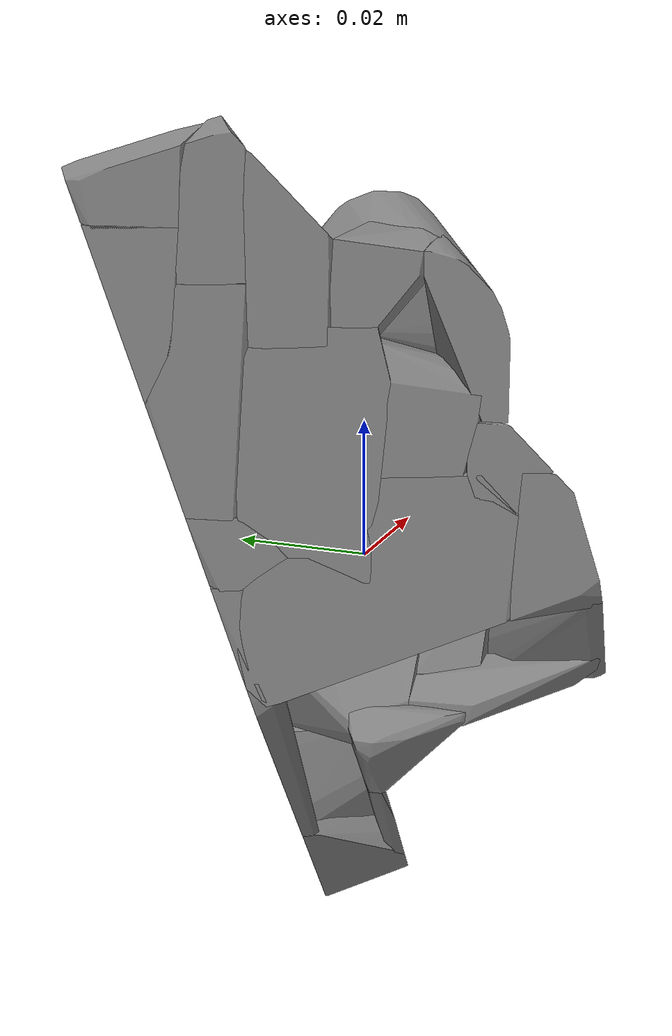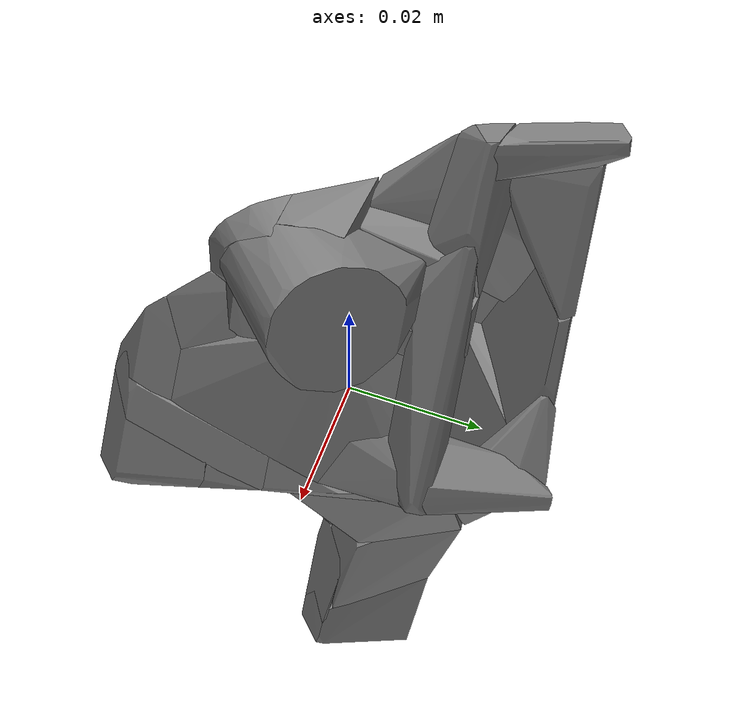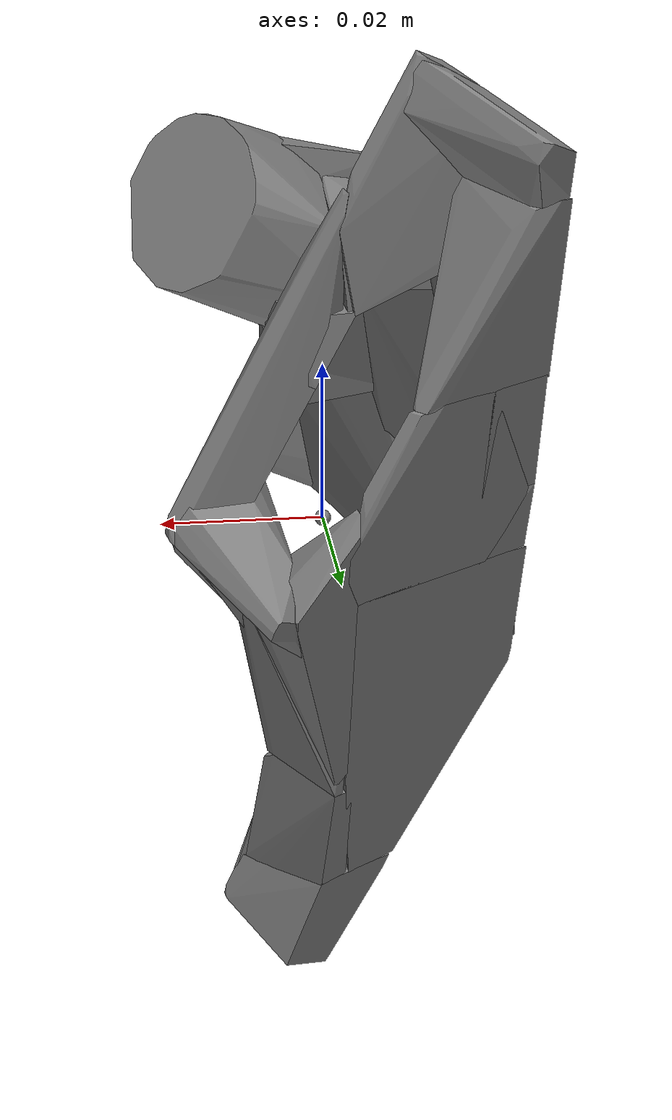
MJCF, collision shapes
<mujoco model="2">
  <default>
    <default class="visual">
      <geom group="2" type="mesh" contype="0" conaffinity="0" material="color_2" />
    </default>
    <default class="collision">
      <geom group="3" type="mesh" solimp="0.95 0.99 0.0001" solref="0.01 1" />
    </default>
  </default>
  <asset>
    <mesh file="2.obj" />
    <mesh file="2_collision_0.obj" />
    <mesh file="2_collision_1.obj" />
    <mesh file="2_collision_2.obj" />
    <mesh file="2_collision_3.obj" />
    <mesh file="2_collision_4.obj" />
    <mesh file="2_collision_5.obj" />
    <mesh file="2_collision_6.obj" />
    <mesh file="2_collision_7.obj" />
    <mesh file="2_collision_8.obj" />
    <mesh file="2_collision_9.obj" />
    <mesh file="2_collision_10.obj" />
    <mesh file="2_collision_11.obj" />
    <mesh file="2_collision_12.obj" />
    <mesh file="2_collision_13.obj" />
    <mesh file="2_collision_14.obj" />
    <mesh file="2_collision_15.obj" />
    <mesh file="2_collision_16.obj" />
    <mesh file="2_collision_17.obj" />
    <mesh file="2_collision_18.obj" />
    <mesh file="2_collision_19.obj" />
    <mesh file="2_collision_20.obj" />
    <mesh file="2_collision_21.obj" />
    <mesh file="2_collision_22.obj" />
    <mesh file="2_collision_23.obj" />
    <mesh file="2_collision_24.obj" />
    <mesh file="2_collision_25.obj" />
    <mesh file="2_collision_26.obj" />
    <mesh file="2_collision_27.obj" />
    <mesh file="2_collision_28.obj" />
    <mesh file="2_collision_29.obj" />
    <mesh file="2_collision_30.obj" />
    <mesh file="2_collision_31.obj" />
    <material name='color_2' specular='0.5' shininess='0.25'
      rgba='0.349019608 0.631372549 0.309803922 1.0' />
  </asset>
  <worldbody>
    <body name="2">
      <site name="centroid" euler="90 0 225" size="0.001 0.001 0.001" />
      <geom name="main_geom" mesh="2" class="visual" />
      <geom mesh="2_collision_0" class="collision" />
      <geom mesh="2_collision_1" class="collision" />
      <geom mesh="2_collision_2" class="collision" />
      <geom mesh="2_collision_3" class="collision" />
      <geom mesh="2_collision_4" class="collision" />
      <geom mesh="2_collision_5" class="collision" />
      <geom mesh="2_collision_6" class="collision" />
      <geom mesh="2_collision_7" class="collision" />
      <geom mesh="2_collision_8" class="collision" />
      <geom mesh="2_collision_9" class="collision" />
      <geom mesh="2_collision_10" class="collision" />
      <geom mesh="2_collision_11" class="collision" />
      <geom mesh="2_collision_12" class="collision" />
      <geom mesh="2_collision_13" class="collision" />
      <geom mesh="2_collision_14" class="collision" />
      <geom mesh="2_collision_15" class="collision" />
      <geom mesh="2_collision_16" class="collision" />
      <geom mesh="2_collision_17" class="collision" />
      <geom mesh="2_collision_18" class="collision" />
      <geom mesh="2_collision_19" class="collision" />
      <geom mesh="2_collision_20" class="collision" />
      <geom mesh="2_collision_21" class="collision" />
      <geom mesh="2_collision_22" class="collision" />
      <geom mesh="2_collision_23" class="collision" />
      <geom mesh="2_collision_24" class="collision" />
      <geom mesh="2_collision_25" class="collision" />
      <geom mesh="2_collision_26" class="collision" />
      <geom mesh="2_collision_27" class="collision" />
      <geom mesh="2_collision_28" class="collision" />
      <geom mesh="2_collision_29" class="collision" />
      <geom mesh="2_collision_30" class="collision" />
      <geom mesh="2_collision_31" class="collision" />
    </body>
  </worldbody>
</mujoco>
